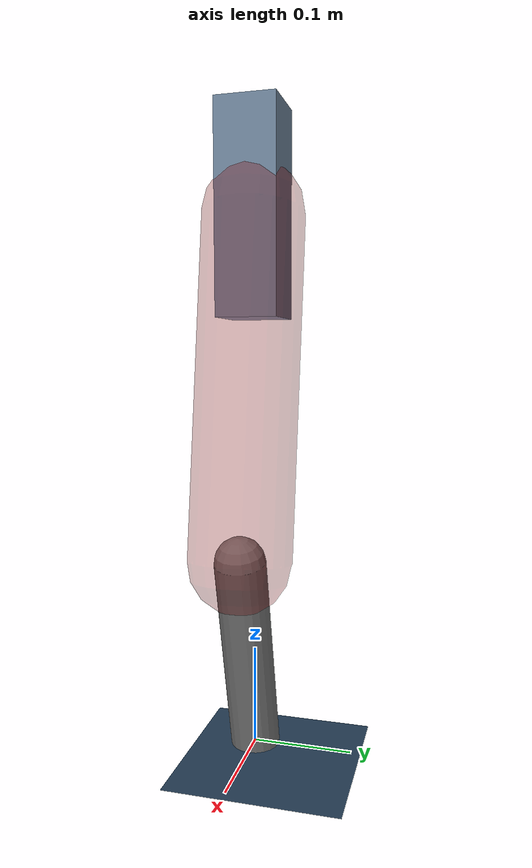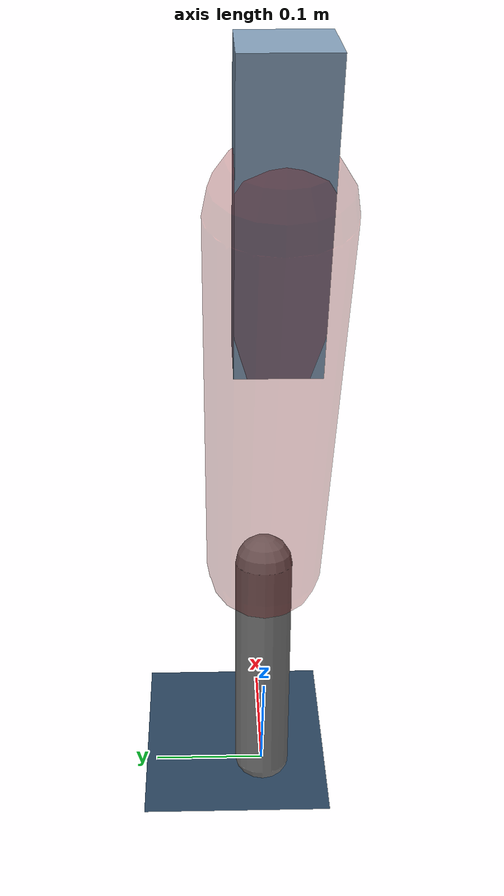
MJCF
<mujoco model="Hopper2D">
	<compiler inertiafromgeom="true" angle="radian" />
	<option timestep="0.001" integrator="implicit" cone="elliptic" solver="Newton" tolerance="1e-10" />

	<default>
		<geom contype="1" conaffinity="1" condim="3" friction="2 0.005 0.0001" solref="0.005 1" />
		<joint limited="true" damping="0.1" />
	</default>

	<asset>
		<texture name="skybox" type="skybox" builtin="gradient" rgb1=".4 .6 .8" rgb2="0 0 0" width="800" height="800" />
		<texture name="grid" type="2d" builtin="checker" rgb1=".1 .2 .3" rgb2=".2 .3 .4" width="300" height="300" mark="edge" markrgb=".2 .3 .4" />
		<material name="ground" texture="grid" texrepeat="1 1" texuniform="true" reflectance="0.1" />
		<material name="leg" rgba="0.5 0.6 0.7 1" />
	</asset>

	<worldbody>

		<geom name="floor" type="plane" size="5 5 0.25" material="ground" />

		<light directional="false" diffuse="0.8 0.8 0.8" specular="0.3 0.3 0.3" pos="0 0 2" dir="0 0 -1" />
		<light mode="targetbodycom" target="base" directional="false" diffuse="0.8 0.8 0.8" specular="0.3 0.3 0.3" pos="0 0 2" dir="0 0 -1" />

		<camera name="fixed" pos="0 -2 1" xyaxes="1 0 0 0 0 1" />
		<camera name="tracking" mode="trackcom" pos="0 -3 1" />

		<body name="root" pos="0 0 0.5353871935957325">
			<joint name="slide_x" type="slide" axis="1 0 0" range="-100 100" />
			<joint name="slide_z" type="slide" axis="0 0 1" range="0 10" />

			<body name="base" pos="0 0 0">
				<geom name="torso" type="box" size="0.03 0.03 0.1" mass="2.45" material="leg" />

				<body name="link1" pos="0 0 0" euler="0 1.419209939163445 0">
					<joint type="hinge" axis="0 -1 0" pos="0 0 0" name="hinge1" limited="true" range="-3.14 3.14" stiffness="0" damping="0.1" />
					<geom name="thigh" type="capsule" fromto="0 0 0 0.33482463403820134 0 0" size="0.05" rgba="0.5 0 0 0.3" mass="1.0842089753069637" />

					<body name="link2" pos="0.33482463403820134 0 0" euler="0 0.39407790974717866 0">
						<joint type="hinge" axis="0 -1 0" pos="0 0 0" name="hinge2" limited="true" range="-3.14 3.14" stiffness="0" damping="0.1" />
						<geom name="shank" type="capsule" fromto="0 0 0 0.21056255955753117 0 0" size="0.025" mass="0.40975004764602496" />

					</body>
				</body>
			</body>
		</body>
	</worldbody>

	<actuator>
		<motor name="torque1" joint="hinge1" ctrlrange="-71.39864380018025 71.39864380018025" ctrllimited="true" gear="1" />
		<motor name="torque2" joint="hinge2" ctrlrange="-105.466447693544 105.466447693544" ctrllimited="true" gear="1" />
	</actuator>
</mujoco>
